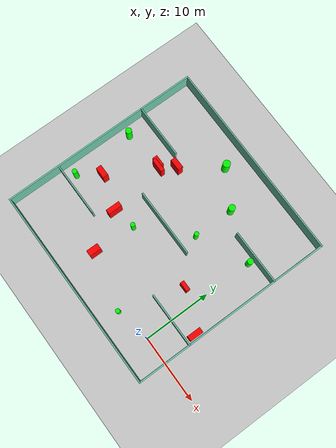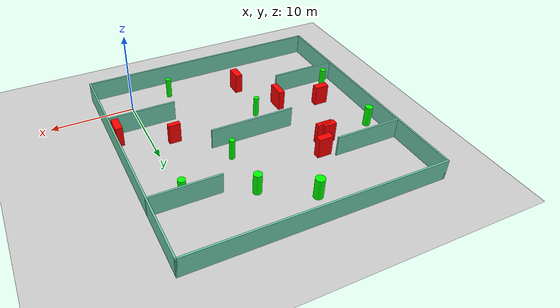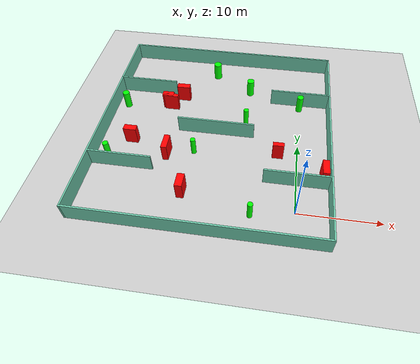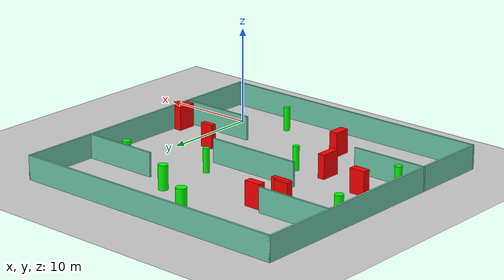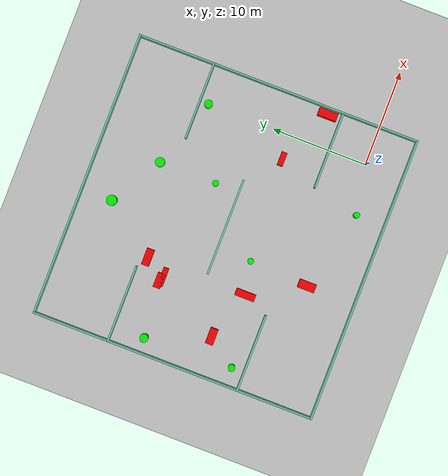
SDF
<sdf version="1.7">
 <world name="default">
  <light name="sun" type="directional">
   <pose>0 0 10 0 -0 0</pose>
   <diffuse>0.8 0.8 0.8 1</diffuse>
   <specular>0.2 0.2 0.2 1</specular>
   <attenuation>
    <range>1000</range>
    <constant>0.9</constant>
    <linear>0.01</linear>
    <quadratic>0.001</quadratic>
   </attenuation>
   <direction>-0.5 0.1 -0.9</direction>
   <spot><inner_angle>0</inner_angle><outer_angle>0</outer_angle><falloff>0</falloff></spot>
  </light>
  <model name="ground_plane">
   <static>1</static>
   <link name="link">
    <collision name="collision">
     <geometry><plane><normal>0 0 1</normal><size>100 100</size></plane></geometry>
     <surface>
      <contact><collide_bitmask>65535</collide_bitmask></contact>
      <friction><ode><mu>100</mu><mu2>50</mu2></ode></friction>
     </surface>
    </collision>
    <visual name="visual">
     <cast_shadows>0</cast_shadows>
     <geometry><plane><normal>0 0 1</normal><size>100 100</size></plane></geometry>
     <material>
      <script><uri>file://media/materials/scripts/gazebo.material</uri><name>Gazebo/Grey</name></script>
     </material>
    </visual>
   </link>
  </model>
  <gravity>0 0 -9.8</gravity>
  <magnetic_field>6e-06 2.3e-05 -4.2e-05</magnetic_field>
  <atmosphere type="adiabatic"/>
  <physics type="ode">
   <max_step_size>0.001</max_step_size>
   <real_time_factor>1</real_time_factor>
   <real_time_update_rate>1000</real_time_update_rate>
  </physics>
  <scene><ambient>0.4 0.4 0.4 1</ambient><background>0.7 0.7 0.7 1</background><shadows>1</shadows></scene>
  <spherical_coordinates>
   <surface_model>EARTH_WGS84</surface_model>
   <latitude_deg>0</latitude_deg>
   <longitude_deg>0</longitude_deg>
   <elevation>0</elevation>
   <heading_deg>0</heading_deg>
  </spherical_coordinates>
  <model name="my_base_walls">
   <link name="Wall_10">
    <collision name="Wall_10_Collision">
     <geometry><box><size>8.2 0.2 2.5</size></box></geometry>
     <pose>0 0 1.25 0 -0 0</pose>
    </collision>
    <visual name="Wall_10_Visual">
     <pose>0 0 1.25 0 -0 0</pose>
     <geometry><box><size>8.2 0.2 2.5</size></box></geometry>
     <material>
      <script><uri>file://media/materials/scripts/gazebo.material</uri><name>Gazebo/Grey</name></script>
      <ambient>0.435294 0.796078 0.67451 1</ambient>
     </material>
     <meta><layer>0</layer></meta>
    </visual>
    <pose>-11 -7 0 0 -0 0</pose>
   </link>
   <link name="Wall_12">
    <collision name="Wall_12_Collision">
     <geometry><box><size>8.2 0.2 2.5</size></box></geometry>
     <pose>0 0 1.25 0 -0 0</pose>
    </collision>
    <visual name="Wall_12_Visual">
     <pose>0 0 1.25 0 -0 0</pose>
     <geometry><box><size>8.2 0.2 2.5</size></box></geometry>
     <material>
      <script><uri>file://media/materials/scripts/gazebo.material</uri><name>Gazebo/Grey</name></script>
      <ambient>0.435294 0.796078 0.67451 1</ambient>
     </material>
     <meta><layer>0</layer></meta>
    </visual>
    <pose>-11 7 0 0 -0 0</pose>
   </link>
   <link name="Wall_14">
    <collision name="Wall_14_Collision">
     <geometry><box><size>8.2 0.2 2.5</size></box></geometry>
     <pose>0 0 1.25 0 -0 0</pose>
    </collision>
    <visual name="Wall_14_Visual">
     <pose>0 0 1.25 0 -0 0</pose>
     <geometry><box><size>8.2 0.2 2.5</size></box></geometry>
     <material>
      <script><uri>file://media/materials/scripts/gazebo.material</uri><name>Gazebo/Grey</name></script>
      <ambient>0.435294 0.796078 0.67451 1</ambient>
     </material>
     <meta><layer>0</layer></meta>
    </visual>
    <pose>11 7 0 0 -0 3.14159</pose>
   </link>
   <link name="Wall_16">
    <collision name="Wall_16_Collision">
     <geometry><box><size>10.2 0.2 2.5</size></box></geometry>
     <pose>0 0 1.25 0 -0 0</pose>
    </collision>
    <visual name="Wall_16_Visual">
     <pose>0 0 1.25 0 -0 0</pose>
     <geometry><box><size>10.2 0.2 2.5</size></box></geometry>
     <material>
      <script><uri>file://media/materials/scripts/gazebo.material</uri><name>Gazebo/Grey</name></script>
      <ambient>0.435294 0.796078 0.67451 1</ambient>
     </material>
     <meta><layer>0</layer></meta>
    </visual>
    <pose>0 0 0 0 -0 3.14159</pose>
   </link>
   <link name="Wall_2">
    <collision name="Wall_2_Collision">
     <geometry><box><size>30.2 0.2 2.5</size></box></geometry>
     <pose>0 0 1.25 0 -0 0</pose>
    </collision>
    <visual name="Wall_2_Visual">
     <pose>0 0 1.25 0 -0 0</pose>
     <geometry><box><size>30.2 0.2 2.5</size></box></geometry>
     <material>
      <script><uri>file://media/materials/scripts/gazebo.material</uri><name>Gazebo/Grey</name></script>
      <ambient>0.435294 0.796078 0.67451 1</ambient>
     </material>
     <meta><layer>0</layer></meta>
    </visual>
    <pose>0 -15 0 0 -0 3.14159</pose>
   </link>
   <link name="Wall_3">
    <collision name="Wall_3_Collision">
     <geometry><box><size>30.2 0.2 2.5</size></box></geometry>
     <pose>0 0 1.25 0 -0 0</pose>
    </collision>
    <visual name="Wall_3_Visual">
     <pose>0 0 1.25 0 -0 0</pose>
     <geometry><box><size>30.2 0.2 2.5</size></box></geometry>
     <material>
      <script><uri>file://media/materials/scripts/gazebo.material</uri><name>Gazebo/Grey</name></script>
      <ambient>0.435294 0.796078 0.67451 1</ambient>
     </material>
     <meta><layer>0</layer></meta>
    </visual>
    <pose>-15 0 0 0 -0 1.5708</pose>
   </link>
   <link name="Wall_4">
    <collision name="Wall_4_Collision">
     <geometry><box><size>30.2 0.2 2.5</size></box></geometry>
     <pose>0 0 1.25 0 -0 0</pose>
    </collision>
    <visual name="Wall_4_Visual">
     <pose>0 0 1.25 0 -0 0</pose>
     <geometry><box><size>30.2 0.2 2.5</size></box></geometry>
     <material>
      <script><uri>file://media/materials/scripts/gazebo.material</uri><name>Gazebo/Grey</name></script>
      <ambient>0.435294 0.796078 0.67451 1</ambient>
     </material>
     <meta><layer>0</layer></meta>
    </visual>
    <pose>0 15 0 0 -0 0</pose>
   </link>
   <link name="Wall_6">
    <collision name="Wall_6_Collision">
     <geometry><box><size>30.2 0.2 2.5</size></box></geometry>
     <pose>0 0 1.25 0 -0 0</pose>
    </collision>
    <visual name="Wall_6_Visual">
     <pose>0 0 1.25 0 -0 0</pose>
     <geometry><box><size>30.2 0.2 2.5</size></box></geometry>
     <material>
      <script><uri>file://media/materials/scripts/gazebo.material</uri><name>Gazebo/Grey</name></script>
      <ambient>0.435294 0.796078 0.67451 1</ambient>
     </material>
     <meta><layer>0</layer></meta>
    </visual>
    <pose>15 0 0 0 -0 1.5708</pose>
   </link>
   <link name="Wall_8">
    <collision name="Wall_8_Collision">
     <geometry><box><size>8.2 0.2 2.5</size></box></geometry>
     <pose>0 0 1.25 0 -0 0</pose>
    </collision>
    <visual name="Wall_8_Visual">
     <pose>0 0 1.25 0 -0 0</pose>
     <geometry><box><size>8.2 0.2 2.5</size></box></geometry>
     <material>
      <script><uri>file://media/materials/scripts/gazebo.material</uri><name>Gazebo/Grey</name></script>
      <ambient>0.435294 0.796078 0.67451 1</ambient>
     </material>
     <meta><layer>0</layer></meta>
    </visual>
    <pose>11 -7 0 0 -0 3.14159</pose>
   </link>
   <static>1</static>
   <pose>-11 11 0 0 -0 0</pose>
  </model>
  <model name="cylinder1">
   <static>1</static>
   <link name="link">
    <inertial>
     <mass>1</mass>
     <inertia><ixx>0.5</ixx><ixy>0</ixy><ixz>0</ixz><iyy>0.5</iyy><iyz>0</iyz><izz>1</izz></inertia>
    </inertial>
    <collision name="collision">
     <geometry><cylinder><radius>0.31630034394034195</radius><length>2.5</length></cylinder></geometry>
    </collision>
    <visual name="visual">
     <geometry><cylinder><radius>0.31630034394034195</radius><length>2.5</length></cylinder></geometry>
     <material>
      <ambient>0 1 0 1</ambient>
      <diffuse>0 1 0 1</diffuse>
      <specular>0.1 0.1 0.1 1</specular>
      <emissive>0 0 0 0</emissive>
     </material>
    </visual>
   </link>
   <pose>-5.147951530174819 -0.9503428072980409 1.25 0 0 0</pose>
  </model>
  <model name="cylinder2">
   <static>1</static>
   <link name="link">
    <inertial>
     <mass>1</mass>
     <inertia><ixx>0.5</ixx><ixy>0</ixy><ixz>0</ixz><iyy>0.5</iyy><iyz>0</iyz><izz>1</izz></inertia>
    </inertial>
    <collision name="collision">
     <geometry><cylinder><radius>0.5444913701028706</radius><length>2.5</length></cylinder></geometry>
    </collision>
    <visual name="visual">
     <geometry><cylinder><radius>0.5444913701028706</radius><length>2.5</length></cylinder></geometry>
     <material>
      <ambient>0 1 0 1</ambient>
      <diffuse>0 1 0 1</diffuse>
      <specular>0.1 0.1 0.1 1</specular>
      <emissive>0 0 0 0</emissive>
     </material>
    </visual>
   </link>
   <pose>-12.595801383628789 22.726521338316587 1.25 0 0 0</pose>
  </model>
  <model name="cylinder3">
   <static>1</static>
   <link name="link">
    <inertial>
     <mass>1</mass>
     <inertia><ixx>0.5</ixx><ixy>0</ixy><ixz>0</ixz><iyy>0.5</iyy><iyz>0</iyz><izz>1</izz></inertia>
    </inertial>
    <collision name="collision">
     <geometry><cylinder><radius>0.4867543810663868</radius><length>2.5</length></cylinder></geometry>
    </collision>
    <visual name="visual">
     <geometry><cylinder><radius>0.4867543810663868</radius><length>2.5</length></cylinder></geometry>
     <material>
      <ambient>0 1 0 1</ambient>
      <diffuse>0 1 0 1</diffuse>
      <specular>0.1 0.1 0.1 1</specular>
      <emissive>0 0 0 0</emissive>
     </material>
    </visual>
   </link>
   <pose>-7.246180746039549 19.537415041158606 1.25 0 0 0</pose>
  </model>
  <model name="cylinder4">
   <static>1</static>
   <link name="link">
    <inertial>
     <mass>1</mass>
     <inertia><ixx>0.5</ixx><ixy>0</ixy><ixz>0</ixz><iyy>0.5</iyy><iyz>0</iyz><izz>1</izz></inertia>
    </inertial>
    <collision name="collision">
     <geometry><cylinder><radius>0.3224313741545217</radius><length>2.5</length></cylinder></geometry>
    </collision>
    <visual name="visual">
     <geometry><cylinder><radius>0.3224313741545217</radius><length>2.5</length></cylinder></geometry>
     <material>
      <ambient>0 1 0 1</ambient>
      <diffuse>0 1 0 1</diffuse>
      <specular>0.1 0.1 0.1 1</specular>
      <emissive>0 0 0 0</emissive>
     </material>
    </visual>
   </link>
   <pose>-13.331154367649976 7.3847307095480375 1.25 0 0 0</pose>
  </model>
  <model name="cylinder5">
   <static>1</static>
   <link name="link">
    <inertial>
     <mass>1</mass>
     <inertia><ixx>0.5</ixx><ixy>0</ixy><ixz>0</ixz><iyy>0.5</iyy><iyz>0</iyz><izz>1</izz></inertia>
    </inertial>
    <collision name="collision">
     <geometry><cylinder><radius>0.4259525106301116</radius><length>2.5</length></cylinder></geometry>
    </collision>
    <visual name="visual">
     <geometry><cylinder><radius>0.4259525106301116</radius><length>2.5</length></cylinder></geometry>
     <material>
      <ambient>0 1 0 1</ambient>
      <diffuse>0 1 0 1</diffuse>
      <specular>0.1 0.1 0.1 1</specular>
      <emissive>0 0 0 0</emissive>
     </material>
    </visual>
   </link>
   <pose>-0.00010176765028901968 17.05937312108435 1.25 0 0 0</pose>
  </model>
  <model name="cylinder6">
   <static>1</static>
   <link name="link">
    <inertial>
     <mass>1</mass>
     <inertia><ixx>0.5</ixx><ixy>0</ixy><ixz>0</ixz><iyy>0.5</iyy><iyz>0</iyz><izz>1</izz></inertia>
    </inertial>
    <collision name="collision">
     <geometry><cylinder><radius>0.3290702088679979</radius><length>2.5</length></cylinder></geometry>
    </collision>
    <visual name="visual">
     <geometry><cylinder><radius>0.3290702088679979</radius><length>2.5</length></cylinder></geometry>
     <material>
      <ambient>0 1 0 1</ambient>
      <diffuse>0 1 0 1</diffuse>
      <specular>0.1 0.1 0.1 1</specular>
      <emissive>0 0 0 0</emissive>
     </material>
    </visual>
   </link>
   <pose>-7.22881109158368 13.525919189673925 1.25 0 0 0</pose>
  </model>
  <model name="cylinder7">
   <static>1</static>
   <link name="link">
    <inertial>
     <mass>1</mass>
     <inertia><ixx>0.5</ixx><ixy>0</ixy><ixz>0</ixz><iyy>0.5</iyy><iyz>0</iyz><izz>1</izz></inertia>
    </inertial>
    <collision name="collision">
     <geometry><cylinder><radius>0.44611265092682234</radius><length>2.5</length></cylinder></geometry>
    </collision>
    <visual name="visual">
     <geometry><cylinder><radius>0.44611265092682234</radius><length>2.5</length></cylinder></geometry>
     <material>
      <ambient>0 1 0 1</ambient>
      <diffuse>0 1 0 1</diffuse>
      <specular>0.1 0.1 0.1 1</specular>
      <emissive>0 0 0 0</emissive>
     </material>
    </visual>
   </link>
   <pose>-24.44115254817972 14.686114027312456 1.25 0 0 0</pose>
  </model>
  <model name="cylinder8">
   <static>1</static>
   <link name="link">
    <inertial>
     <mass>1</mass>
     <inertia><ixx>0.5</ixx><ixy>0</ixy><ixz>0</ixz><iyy>0.5</iyy><iyz>0</iyz><izz>1</izz></inertia>
    </inertial>
    <collision name="collision">
     <geometry><cylinder><radius>0.3592413074787923</radius><length>2.5</length></cylinder></geometry>
    </collision>
    <visual name="visual">
     <geometry><cylinder><radius>0.3592413074787923</radius><length>2.5</length></cylinder></geometry>
     <material>
      <ambient>0 1 0 1</ambient>
      <diffuse>0 1 0 1</diffuse>
      <specular>0.1 0.1 0.1 1</specular>
      <emissive>0 0 0 0</emissive>
     </material>
    </visual>
   </link>
   <pose>-24.0853761325556 5.330812249964524 1.25 0 0 0</pose>
  </model>
  <model name="box1">
   <static>1</static>
   <link name="link">
    <inertial>
     <mass>1</mass>
     <inertia><ixx>0.083</ixx><ixy>0</ixy><ixz>0</ixz><iyy>0.083</iyy><iyz>0</iyz><izz>0.083</izz></inertia>
    </inertial>
    <collision name="collision">
     <geometry><box><size>0.8212490005454236 1.9965773345245974 2.5</size></box></geometry>
    </collision>
    <visual name="visual">
     <geometry><box><size>0.8212490005454236 1.9965773345245974 2.5</size></box></geometry>
     <material>
      <ambient>1 0 0 1</ambient>
      <diffuse>1 0 0 1</diffuse>
      <specular>0.1 0.1 0.1 1</specular>
      <emissive>0 0 0 0</emissive>
     </material>
    </visual>
    <sensor name="my_contact" type="contact">
     <contact><collision>box_collision</collision><topic>__default_topic__</topic></contact>
    </sensor>
   </link>
   <pose>3.3177326738899318 5.409102265677083 1.25 0 0 0</pose>
  </model>
  <model name="box2">
   <static>1</static>
   <link name="link">
    <inertial>
     <mass>1</mass>
     <inertia><ixx>0.083</ixx><ixy>0</ixy><ixz>0</ixz><iyy>0.083</iyy><iyz>0</iyz><izz>0.083</izz></inertia>
    </inertial>
    <collision name="collision">
     <geometry><box><size>1.7473608625638548 0.7744162464948257 2.5</size></box></geometry>
    </collision>
    <visual name="visual">
     <geometry><box><size>1.7473608625638548 0.7744162464948257 2.5</size></box></geometry>
     <material>
      <ambient>1 0 0 1</ambient>
      <diffuse>1 0 0 1</diffuse>
      <specular>0.1 0.1 0.1 1</specular>
      <emissive>0 0 0 0</emissive>
     </material>
    </visual>
    <sensor name="my_contact" type="contact">
     <contact><collision>box_collision</collision><topic>__default_topic__</topic></contact>
    </sensor>
   </link>
   <pose>-16.65846129937561 17.241931538973667 1.25 0 0 0</pose>
  </model>
  <model name="box3">
   <static>1</static>
   <link name="link">
    <inertial>
     <mass>1</mass>
     <inertia><ixx>0.083</ixx><ixy>0</ixy><ixz>0</ixz><iyy>0.083</iyy><iyz>0</iyz><izz>0.083</izz></inertia>
    </inertial>
    <collision name="collision">
     <geometry><box><size>1.6708948044820133 0.8119811146618687 2.5</size></box></geometry>
    </collision>
    <visual name="visual">
     <geometry><box><size>1.6708948044820133 0.8119811146618687 2.5</size></box></geometry>
     <material>
      <ambient>1 0 0 1</ambient>
      <diffuse>1 0 0 1</diffuse>
      <specular>0.1 0.1 0.1 1</specular>
      <emissive>0 0 0 0</emissive>
     </material>
    </visual>
    <sensor name="my_contact" type="contact">
     <contact><collision>box_collision</collision><topic>__default_topic__</topic></contact>
    </sensor>
   </link>
   <pose>-21.82254981981716 8.337817310381709 1.25 0 0 0</pose>
  </model>
  <model name="box4">
   <static>1</static>
   <link name="link">
    <inertial>
     <mass>1</mass>
     <inertia><ixx>0.083</ixx><ixy>0</ixy><ixz>0</ixz><iyy>0.083</iyy><iyz>0</iyz><izz>0.083</izz></inertia>
    </inertial>
    <collision name="collision">
     <geometry><box><size>1.5514248427627764 0.7366994582087462 2.5</size></box></geometry>
    </collision>
    <visual name="visual">
     <geometry><box><size>1.5514248427627764 0.7366994582087462 2.5</size></box></geometry>
     <material>
      <ambient>1 0 0 1</ambient>
      <diffuse>1 0 0 1</diffuse>
      <specular>0.1 0.1 0.1 1</specular>
      <emissive>0 0 0 0</emissive>
     </material>
    </visual>
    <sensor name="my_contact" type="contact">
     <contact><collision>box_collision</collision><topic>__default_topic__</topic></contact>
    </sensor>
   </link>
   <pose>-18.45853518173387 15.356481800614265 1.25 0 0 0</pose>
  </model>
  <model name="box5">
   <static>1</static>
   <link name="link">
    <inertial>
     <mass>1</mass>
     <inertia><ixx>0.083</ixx><ixy>0</ixy><ixz>0</ixz><iyy>0.083</iyy><iyz>0</iyz><izz>0.083</izz></inertia>
    </inertial>
    <collision name="collision">
     <geometry><box><size>0.7354744522571075 2.067409548311092 2.5</size></box></geometry>
    </collision>
    <visual name="visual">
     <geometry><box><size>0.7354744522571075 2.067409548311092 2.5</size></box></geometry>
     <material>
      <ambient>1 0 0 1</ambient>
      <diffuse>1 0 0 1</diffuse>
      <specular>0.1 0.1 0.1 1</specular>
      <emissive>0 0 0 0</emissive>
     </material>
    </visual>
    <sensor name="my_contact" type="contact">
     <contact><collision>box_collision</collision><topic>__default_topic__</topic></contact>
    </sensor>
   </link>
   <pose>-16.70014974790258 6.673930831828109 1.25 0 0 0</pose>
  </model>
  <model name="box6">
   <static>1</static>
   <link name="link">
    <inertial>
     <mass>1</mass>
     <inertia><ixx>0.083</ixx><ixy>0</ixy><ixz>0</ixz><iyy>0.083</iyy><iyz>0</iyz><izz>0.083</izz></inertia>
    </inertial>
    <collision name="collision">
     <geometry><box><size>0.8931682004311574 1.7626610529351385 2.5</size></box></geometry>
    </collision>
    <visual name="visual">
     <geometry><box><size>0.8931682004311574 1.7626610529351385 2.5</size></box></geometry>
     <material>
      <ambient>1 0 0 1</ambient>
      <diffuse>1 0 0 1</diffuse>
      <specular>0.1 0.1 0.1 1</specular>
      <emissive>0 0 0 0</emissive>
     </material>
    </visual>
    <sensor name="my_contact" type="contact">
     <contact><collision>box_collision</collision><topic>__default_topic__</topic></contact>
    </sensor>
   </link>
   <pose>-13.61803150077826 1.1742825066153326 1.25 0 0 0</pose>
  </model>
  <model name="box7">
   <static>1</static>
   <link name="link">
    <inertial>
     <mass>1</mass>
     <inertia><ixx>0.083</ixx><ixy>0</ixy><ixz>0</ixz><iyy>0.083</iyy><iyz>0</iyz><izz>0.083</izz></inertia>
    </inertial>
    <collision name="collision">
     <geometry><box><size>1.9726348346830824 0.5509710715447301 2.5</size></box></geometry>
    </collision>
    <visual name="visual">
     <geometry><box><size>1.9726348346830824 0.5509710715447301 2.5</size></box></geometry>
     <material>
      <ambient>1 0 0 1</ambient>
      <diffuse>1 0 0 1</diffuse>
      <specular>0.1 0.1 0.1 1</specular>
      <emissive>0 0 0 0</emissive>
     </material>
    </visual>
    <sensor name="my_contact" type="contact">
     <contact><collision>box_collision</collision><topic>__default_topic__</topic></contact>
    </sensor>
   </link>
   <pose>-17.993102052781072 15.097986634072477 1.25 0 0 0</pose>
  </model>
  <model name="box8">
   <static>1</static>
   <link name="link">
    <inertial>
     <mass>1</mass>
     <inertia><ixx>0.083</ixx><ixy>0</ixy><ixz>0</ixz><iyy>0.083</iyy><iyz>0</iyz><izz>0.083</izz></inertia>
    </inertial>
    <collision name="collision">
     <geometry><box><size>1.4113702563727017 0.5801982187839768 2.5</size></box></geometry>
    </collision>
    <visual name="visual">
     <geometry><box><size>1.4113702563727017 0.5801982187839768 2.5</size></box></geometry>
     <material>
      <ambient>1 0 0 1</ambient>
      <diffuse>1 0 0 1</diffuse>
      <specular>0.1 0.1 0.1 1</specular>
      <emissive>0 0 0 0</emissive>
     </material>
    </visual>
    <sensor name="my_contact" type="contact">
     <contact><collision>box_collision</collision><topic>__default_topic__</topic></contact>
    </sensor>
   </link>
   <pose>-2.5225654952338665 8.108089647823924 1.25 0 0 0</pose>
  </model>
 </world>
</sdf>
